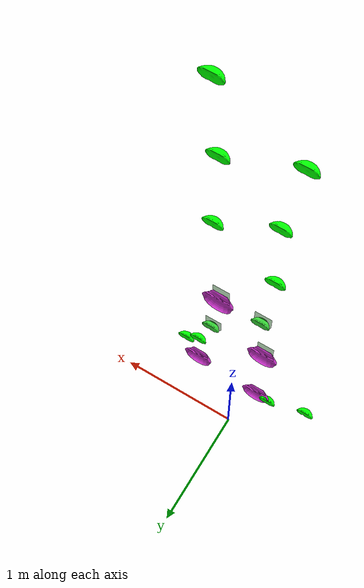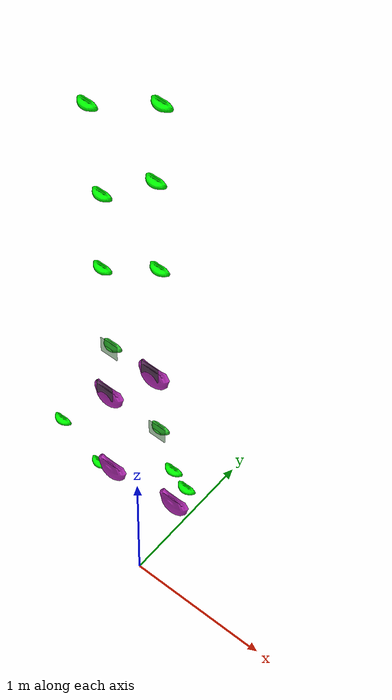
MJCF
<mujoco>
  <default>
  </default>

  <compiler angle="radian" autolimits="true"/>
  <worldbody>
    <body name="h1" pos="-0.3 0.0 1.0" quat="0.70710678 0.70710678 0.0 0.0">
        <geom type="mesh" name="h1 geom" mesh="Jug1Center" rgba="0 1 0 1" />
    </body>
    <body name="h2" pos="0.3 0.0 1.5" quat="0.70710678 0.70710678 0.0 0.0">
        <geom type="mesh" name="h2 geom" mesh="Jug1Center" rgba="0 1 0 1" />
    </body>
    <body name="h3" pos="-0.2 0.0 3.0" quat="0.70710678 0.70710678 0.0 0.0">
        <geom type="mesh" name="h3 geom" mesh="Jug1Center" rgba="0 1 0 1" />
    </body>
    <body name="h4" pos="0.2 0.0 3.30" quat="0.70710678 0.70710678 0.0 0.0">
        <geom type="mesh" name="h4 geom" mesh="Jug1Center" rgba="0 1 0 1" />
    </body>
    <body name="h5" pos="-0.18 0.0 3.60" quat="0.70710678 0.70710678 0.0 0.0">
        <geom type="mesh" name="h5 geom" mesh="Jug1Center" rgba="0 1 0 1" />
    </body>
    <body name="h6" pos="0.18 0.0 3.95" quat="0.70710678 0.70710678 0.0 0.0">
        <geom type="mesh" name="h6 geom" mesh="Jug1Center" rgba="0 1 0 1" />
    </body>
    <body name="h7" pos="-0.25 0.0 4.2" quat="0.70710678 0.70710678 0.0 0.0">
        <geom type="mesh" name="h7 geom" mesh="Jug1Center" rgba="0 1 0 1" />
    </body>
    <body name="h8" pos="0.22 0.0 4.5" quat="0.70710678 0.70710678 0.0 0.0">
        <geom type="mesh" name="h8 geom" mesh="Jug1Center" rgba="0 1 0 1" />
    </body>

    <body name="Jug1Center_3" pos="-0.6 0.0 1.2" quat="0.70710678 0.70710678 0.0 0.0">
        <geom type="mesh" name="Jug1Center_3 geom" mesh="Jug1Center" rgba="0 1 0 1" />
    </body>
    <body name="Jug1Center_4" pos="0.4 0.0 1.4" quat="0.70710678 0.70710678 0.0 0.0">
        <geom type="mesh" name="Jug1Center_4 geom" mesh="Jug1Center" rgba="0 1 0 1" />
    </body>
    <body name="Jug2Center_5" pos="0.3 0.0 1.2" quat="0.70710678 0.70710678 0.0 0.0">
        <geom type="mesh" name="Jug2Center_5 geom" mesh="Jug2Center" rgba="0.8 0.2 0.8 1" />
    </body>
    <body name="Jug2Center_6" pos="-0.2 0.0 1.1" quat="0.70710678 0.70710678 0.0 0.0">
        <geom type="mesh" name="Jug2Center_6 geom" mesh="Jug2Center" rgba="0.8 0.2 0.8 1" />
    </body>
    <body pos="-0.2 0.0 1.9" quat="0.70710678 0.70710678 0.0 0.0">
        <geom type="mesh" mesh="Jug2Center" rgba="0.8 0.2 0.8 1" />
        <geom  type="box" pos="0.0 0.0 0.043" size="0.06 0.06 0.002" rgba="0.1 0.4 0.1 0.5" solimp="0.99 0.99 0.01" solref="0.01 1"/>
    </body>
    <body pos="0.2 0.0 1.85" quat="0.70710678 0.70710678 0.0 0.0">
        <geom type="mesh" mesh="Jug1Center" rgba="0.2 0.8 0.2 1" />
        <geom  type="box" pos="0.0 0.0 0.043" size="0.06 0.06 0.002" rgba="0.1 0.4 0.1 0.5" solimp="0.99 0.99 0.01" solref="0.01 1"/>
    </body>
    <body pos="0.15 0.0 2.40" quat="0.70710678 0.70710678 0.0 0.0">
        <geom type="mesh" mesh="Jug2Center" rgba="0.8 0.2 0.8 1" />
        <geom  type="box" pos="0 0 0.043" size="0.06 0.06 0.001" rgba="0.1 0.4 0.1 0.5" solimp="0.99 0.99 0.01" solref="0.01 1"/>
    </body>
    <body pos="-0.15 0.0 2.35" quat="0.70710678 0.70710678 0.0 0.0">
        <geom type="mesh" mesh="Jug1Center" rgba="0.2 0.8 0.2 1" />
        <geom  type="box" pos="0.0 0.0 0.043" size="0.06 0.06 0.002" rgba="0.1 0.4 0.1 0.5" solimp="0.99 0.99 0.01" solref="0.01 1"/>
    </body>
  </worldbody>
  <asset>
    <mesh scale="1 1 1" name="Jug1Center" file="assets/Wall/jug1_center.obj"/>
    <mesh name="Jug2Center" file="assets/Wall/jug3_center.obj"/>
  </asset>
</mujoco>
